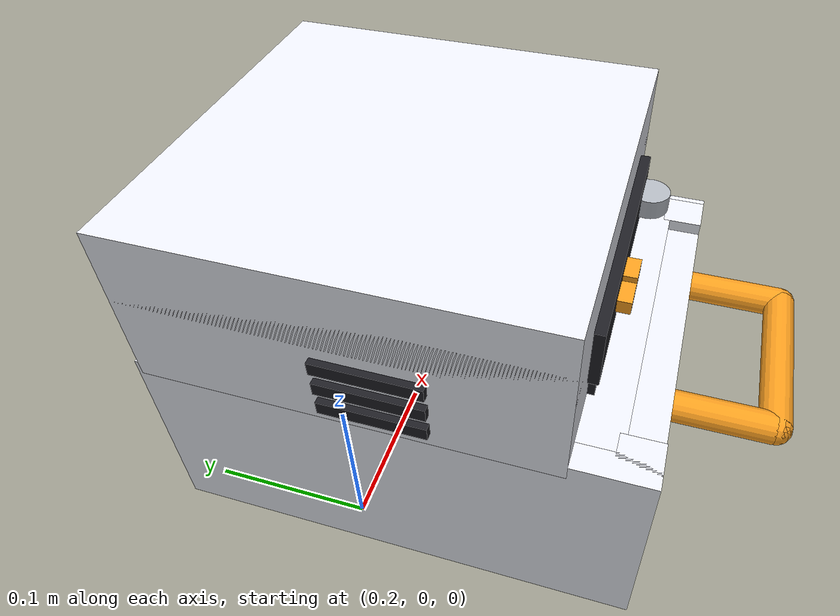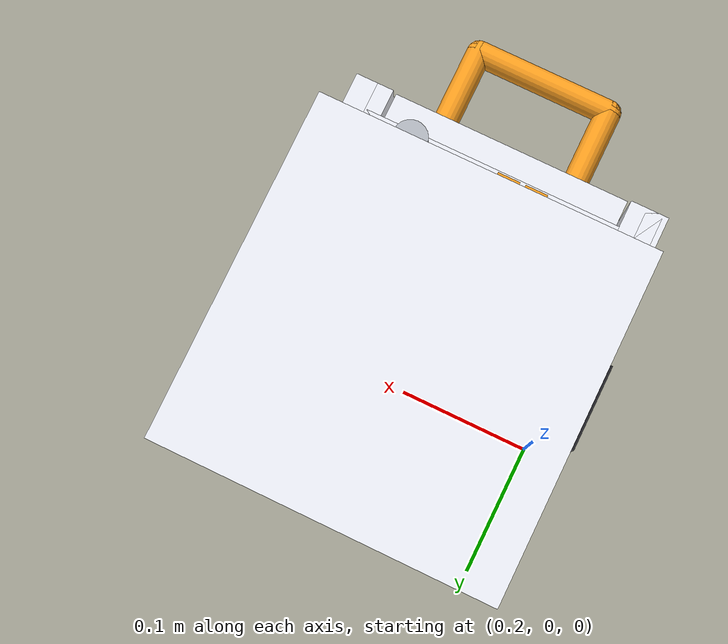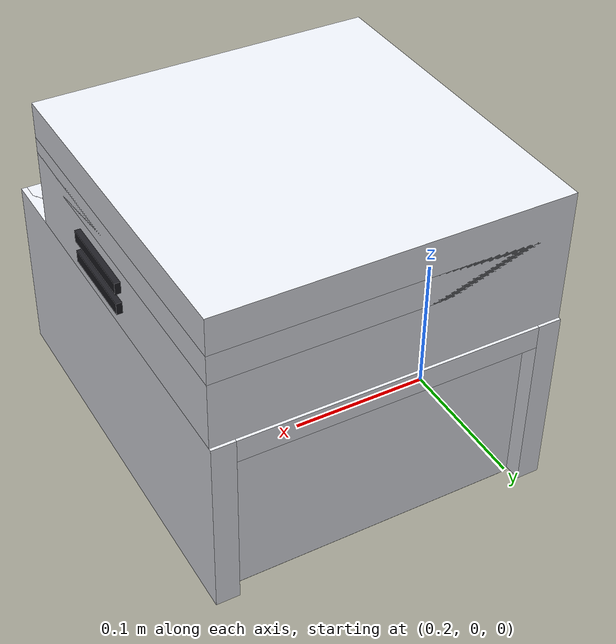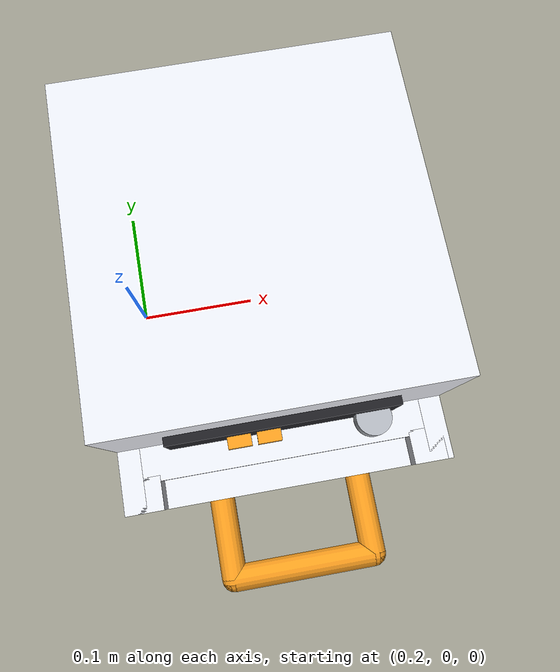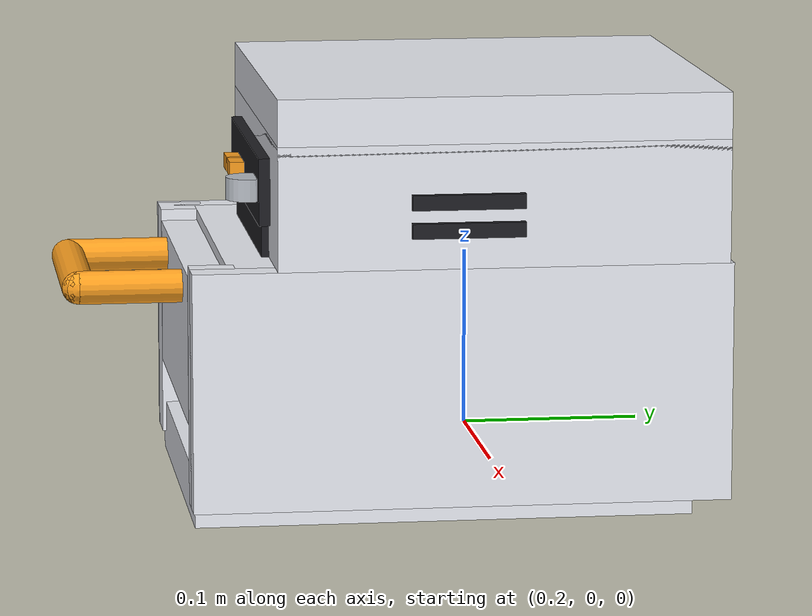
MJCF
<?xml version="1.0" encoding="utf-8"?>
<mujoco model="cabinet">

  <!-- Added: brighter airfryer-like materials -->
  <asset>
    <material name="MatAirfryerBody"   rgba="0.92 0.93 0.96 1" specular="0.25" shininess="0.6"/>
    <material name="MatAirfryerDark"   rgba="0.12 0.12 0.14 1" specular="0.15" shininess="0.4"/>
    <material name="MatAirfryerAccent" rgba="0.98 0.62 0.12 1" specular="0.20" shininess="0.5"/>
    <material name="MatAirfryerMetal"  rgba="0.70 0.72 0.75 1" specular="0.60" shininess="0.9"/>
  </asset>

  <worldbody>
    <body>
      <body name="object" pos="0.3 0 0">
        <body name="base" pos="0 0 0" quat="1 0 0 0">

          <!-- swapped MatRedWood -> MatAirfryerBody -->
          <geom name="drawer_left_wall"  material="MatAirfryerBody" pos="-0.11 -0.0315 0.065" size="0.008 0.1435 0.064" group="0" type="box" mass="0.05"/>
          <geom name="drawer_right_wall" material="MatAirfryerBody" pos="0.11  -0.0315 0.065" size="0.008 0.1435 0.064" group="0" type="box" mass="0.05"/>

          <geom name="drawer_back_wall" material="MatAirfryerBody" pos="0 0.092 0.062" size="0.102 0.008 0.064" group="0" type="box" mass="0.05"/>

          <geom name="drawer_bottom_surface" material="MatAirfryerBody" pos="0 -0.0395 0.004" size="0.102 0.1335 0.014" group="0" type="box" mass="0.05"/>
          <geom name="drawer_top_surface"    material="MatAirfryerBody" pos="0 -0.0215 0.121" size="0.102 0.1335 0.008" group="0" type="box" mass="0.05"/>

          <geom name="drawer_cavity_1" material="MatAirfryerBody" pos="-0.102 -0.163 0.065" size="0.012 0.012 0.064" group="0" type="box" mass="0.05"/>
          <geom name="drawer_cavity_2" material="MatAirfryerBody" pos="0.102  -0.163 0.065" size="0.012 0.012 0.064" group="0" type="box" mass="0.05"/>

            <!-- Added: Airfryer-like housing that rides on the drawer_link -->

            <!-- main housing -->
            <geom name="airfryer_body" material="MatAirfryerBody"
                  pos="0 -0.01 0.170" size="0.118 0.12 0.050" type="box" group="0" mass="0.40"/>

            <!-- top lid / cap -->
            <geom name="airfryer_top" material="MatAirfryerBody"
                  pos="0 -0.01 0.185" size="0.118 0.12 0.010" type="box" group="0" mass="0.10"/>

            <!-- front control panel strip -->
            <geom name="airfryer_panel" material="MatAirfryerDark"
                  pos="0 -0.13 0.165" size="0.078 0.006 0.018" type="box" group="0" mass="0.02"/>

            <!-- front window (basket window) -->
            <geom name="airfryer_window" material="MatAirfryerDark"
                  pos="0 -0.13 0.120" size="0.070 0.004 0.030" type="box" group="0" mass="0.01"/>

            <!-- knob -->
            <geom name="airfryer_knob" material="MatAirfryerMetal"
                  pos="0.060 -0.140 0.165" size="0.012 0.006" type="cylinder" group="0" mass="0.01"/>

            <!-- two buttons -->
            <geom name="airfryer_button_1" material="MatAirfryerAccent"
                  pos="-0.030 -0.140 0.165" size="0.008 0.004 0.004" type="box" group="0" mass="0.002"/>
            <geom name="airfryer_button_2" material="MatAirfryerAccent"
                  pos="-0.010 -0.140 0.165" size="0.008 0.004 0.004" type="box" group="0" mass="0.002"/>

            <!-- simple side vents (right side) -->
            <geom name="airfryer_vent_r2" material="MatAirfryerDark"
                  pos="0.121 -0.030 0.150" size="0.002 0.030 0.004" type="box" group="0" mass="0.001"/>
            <geom name="airfryer_vent_r3" material="MatAirfryerDark"
                  pos="0.121 -0.030 0.165" size="0.002 0.030 0.004" type="box" group="0" mass="0.001"/>

            <!-- matching side vents (left side) -->
            <geom name="airfryer_vent_l1" material="MatAirfryerDark"
                  pos="-0.121 -0.030 0.135" size="0.002 0.030 0.004" type="box" group="0" mass="0.001"/>
            <geom name="airfryer_vent_l2" material="MatAirfryerDark"
                  pos="-0.121 -0.030 0.150" size="0.002 0.030 0.004" type="box" group="0" mass="0.001"/>
            <geom name="airfryer_vent_l3" material="MatAirfryerDark"
                  pos="-0.121 -0.030 0.165" size="0.002 0.030 0.004" type="box" group="0" mass="0.001"/>

          <body name="drawer_link" pos="0 -0.01 0.076">
            <inertial pos="0 0 0.35" quat="0.5 0.5 0.5 0.5" mass="7.85398" diaginertia="0.923301 0.764585 0.168533" />

            <joint type="slide" range="-1.0 0" axis="0 1 0"
                   name="goal_slidey" pos="0 0 0" damping="100.0"/>

            <!-- swapped MatRedWood -> MatAirfryerBody -->
            <geom name="drawer_tray_1" material="MatAirfryerBody" pos="0 -0.155 0.007" size="0.088 0.010 0.040" group="0" type="box" mass="0.04"/>
            <geom name="drawer_tray_2" material="MatAirfryerBody" pos="0 0.065 0.008"  size="0.095 0.008 0.028" group="0" type="box" mass="0.04"/>
            <geom name="drawer_tray_3" material="MatAirfryerBody" pos="-0.072 -0.042 -0.015" size="0.008 0.114 0.008" group="0" type="box" mass="0.04"/>
            <geom name="drawer_tray_4" material="MatAirfryerBody" pos="0.072  -0.042 -0.015" size="0.008 0.114 0.008" group="0" type="box" mass="0.04"/>
            <geom name="drawer_bottom" material="MatAirfryerBody" pos="0 -0.04 -0.03" size="0.08 0.12 0.008" group="0" type="box" mass="0.04"/>

            <!-- swapped MatLightWood -> MatAirfryerAccent -->
            <geom name="drawer_handle_1" material="MatAirfryerAccent" quat="0.7071055 0.7071081 0 0" pos="-0.05 -0.19 0.035" size="0.009 0.03" group="0" type="capsule" mass="0.06"/>
            <geom name="drawer_handle_2" material="MatAirfryerAccent" quat="0.7071055 0 0.7071081 0" pos="0 -0.22 0.035"     size="0.009 0.05" group="0" type="capsule" mass="0.06"/>
            <geom name="drawer_handle_3" material="MatAirfryerAccent" quat="0.7071055 0.7071081 0 0" pos="0.05 -0.19 0.035"  size="0.009 0.03" group="0" type="capsule" mass="0.06"/>

          </body>
        </body>

        <site name="bottom_site" pos="0 0 -0.3" rgba="0 0 0 0" size="0.005"/>
        <site name="top_site" pos="0 0 0.3" rgba="0 0 0 0" size="0.005"/>
        <site name="horizontal_radius_site" pos="0.3 0 0" rgba="0 0 0 0" size="0.1"/>
      </body>
    </body>
  </worldbody>

</mujoco>
